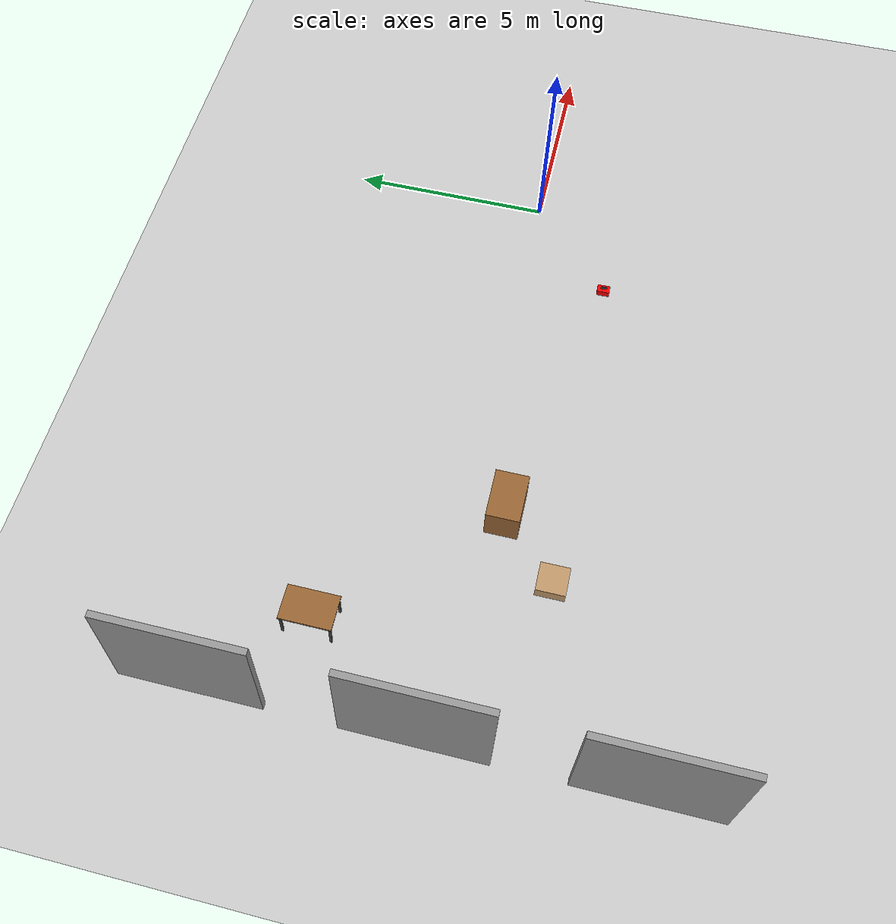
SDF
<sdf version="1.8">
 <world name="my_world">
  <physics name="1ms" type="ignored">
   <max_step_size>0.001</max_step_size>
   <real_time_factor>1.0</real_time_factor>
  </physics>
  <plugin filename="ignition-gazebo-physics-system" name="gz::sim::systems::Physics"/>
  <plugin filename="ignition-gazebo-user-commands-system" name="gz::sim::systems::UserCommands"/>
  <plugin filename="ignition-gazebo-scene-broadcaster-system" name="gz::sim::systems::SceneBroadcaster"/>
  <plugin filename="libignition-gazebo-sensors-system.so" name="ignition::gazebo::systems::Sensors">
   <render_engine>ogre2</render_engine>
  </plugin>
  <light type="directional" name="main_sun">
   <pose>0 0 10 0 0 0</pose>
   <diffuse>0.8 0.8 0.8 1</diffuse>
   <specular>0.2 0.2 0.2 1</specular>
   <attenuation>
    <range>1000</range>
    <constant>0.9</constant>
    <linear>0.01</linear>
    <quadratic>0.001</quadratic>
   </attenuation>
   <direction>-0.5 0.1 -0.9</direction>
  </light>
  <model name="ground_plane">
   <static>true</static>
   <link name="link">
    <collision name="collision">
     <geometry><plane><normal>0 0 1</normal><size>100 100</size></plane></geometry>
    </collision>
    <visual name="visual">
     <geometry><plane><normal>0 0 1</normal><size>100 100</size></plane></geometry>
     <material>
      <ambient>0.8 0.8 0.8 1</ambient>
      <diffuse>0.8 0.8 0.8 1</diffuse>
      <specular>0.8 0.8 0.8 1</specular>
     </material>
    </visual>
   </link>
  </model>
  <include>
   <uri>model://garage_door</uri>
   <name>right_door</name>
   <pose>-15.033500 -5.081130 1.687260 0 0 0</pose>
  </include>
  <include>
   <uri>model://garage_door</uri>
   <name>central_door</name>
   <pose>-15.033500 -0.136491 1.687260 0 0 0</pose>
  </include>
  <include>
   <uri>model://garage_door</uri>
   <name>left_door</name>
   <pose>-15.033500 4.803520 1.687260 0 0 0</pose>
  </include>
  <include>
   <uri>file:///home/moonlab/ros2_ws/src/ros2_ignition_thesis/my_sim_tesi_gazebo/models/husky/model.sdf</uri>
   <name>husky_robot</name>
   <pose>-13.10 2.64 0.5 0 0 -1.57079</pose>
  </include>
  <include>
   <uri>model://parallelepiped</uri>
   <pose>-10.773700 -2.313900 0.15 0 0 0</pose>
   <name>start_parallelepiped</name>
  </include>
  <model name="red_toolbox">
   <pose>-3.8022060 -2.12 2 0 0 -1.561590</pose>
   <link name="toolbox_body">
    <inertial>
     <mass>2.0</mass>
     <inertia><ixx>0.02</ixx><ixy>0.0</ixy><ixz>0.0</ixz><iyy>0.02</iyy><iyz>0.0</iyz><izz>0.02</izz></inertia>
    </inertial>
    <collision name="body_collision"><geometry><box><size>0.3 0.2 0.15</size></box></geometry></collision>
    <visual name="body_visual">
     <geometry><box><size>0.3 0.2 0.15</size></box></geometry>
     <material><ambient>0.8 0 0 1</ambient><diffuse>1 0 0 1</diffuse><specular>0.5 0.5 0.5 1</specular></material>
    </visual>
    <collision name="handle_collision">
     <pose>0 0 0.1 0 0 0</pose>
     <geometry><box><size>0.15 0.02 0.08</size></box></geometry>
    </collision>
    <visual name="handle_visual">
     <pose>0 0 0.1 0 0 0</pose>
     <geometry><box><size>0.15 0.02 0.08</size></box></geometry>
     <material>
      <ambient>0.2 0.2 0.2 1</ambient>
      <diffuse>0.3 0.3 0.3 1</diffuse>
      <specular>0.8 0.8 0.8 1</specular>
     </material>
    </visual>
   </link>
  </model>
  <model name="centre_table">
   <static>false</static>
   <pose>-9.27 -0.930217 0.45 0 0 0</pose>
   <link name="table_link">
    <inertial>
     <mass>20.0</mass>
     <inertia><ixx>1.5</ixx><ixy>0.0</ixy><ixz>0.0</ixz><iyy>2.5</iyy><iyz>0.0</iyz><izz>1.0</izz></inertia>
    </inertial>
    <collision name="table_collision"><geometry><box><size>1.2 0.8 0.9</size></box></geometry></collision>
    <visual name="table_visual">
     <geometry><box><size>1.2 0.8 0.9</size></box></geometry>
     <material>
      <ambient>0.5 0.3 0.1 1</ambient>
      <diffuse>0.6 0.4 0.2 1</diffuse>
      <specular>0.1 0.1 0.1 1</specular>
     </material>
    </visual>
   </link>
  </model>
 </world>
</sdf>

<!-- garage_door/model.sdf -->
<sdf version="1.8">
    <model name = "garage_door">
        <static>true</static>
        <link name = "door_link">
            <visual name = "door_visual">
                <geometry>
                    <box>
                        <size> 0.15 3.30 3.25 </size>
                    </box>
                </geometry>
                <material>
                    <ambient>0.3 0.3 0.3 1</ambient>
                    <diffuse>0.6 0.6 0.6 1</diffuse>
                    <specular>0.9 0.9 0.9 1</specular>
                    <emissive>0 0 0 1</emissive>
                </material>
            </visual>
        </link>
    </model>
</sdf>

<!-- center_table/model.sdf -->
<sdf version="1.7">

<model name="center_table">
  <static>true</static>

  <!-- Table top -->
  <link name="table_top">
    <pose>0 0 0.75 0 0 0</pose>
    <visual name="visual">
      <geometry>
        <box>
          <size>1.2 0.8 0.05</size>
        </box>
      </geometry>
      <material>
        <ambient>0.6 0.4 0.2 1</ambient>
        <diffuse>0.6 0.4 0.2 1</diffuse>
      </material>
    </visual>
    <collision name="collision">
      <geometry>
        <box>
          <size>1.2 0.8 0.05</size>
        </box>
      </geometry>
    </collision>
  </link>

  <!-- 4 legs -->
  <!-- leg length = 0.7, thickness = 0.05 -->
  <link name="leg1">
    <pose>0.55 0.35 0.35 0 0 0</pose>
    <visual name="visual">
      <geometry>
        <box><size>0.05 0.05 0.7</size></box>
      </geometry>
      <material><ambient>0.3 0.3 0.3 1</ambient></material>
    </visual>
    <collision name="collision">
      <geometry><box><size>0.05 0.05 0.7</size></box></geometry>
    </collision>
  </link>

  <link name="leg2">
    <pose>-0.55 0.35 0.35 0 0 0</pose>
    <visual name="visual">
      <geometry><box><size>0.05 0.05 0.7</size></box></geometry>
      <material><ambient>0.3 0.3 0.3 1</ambient></material>
    </visual>
    <collision name="collision">
      <geometry><box><size>0.05 0.05 0.7</size></box></geometry>
    </collision>
  </link>

  <link name="leg3">
    <pose>0.55 -0.35 0.35 0 0 0</pose>
    <visual name="visual">
      <geometry><box><size>0.05 0.05 0.7</size></box></geometry>
      <material><ambient>0.3 0.3 0.3 1</ambient></material>
    </visual>
    <collision name="collision">
      <geometry><box><size>0.05 0.05 0.7</size></box></geometry>
    </collision>
  </link>

  <link name="leg4">
    <pose>-0.55 -0.35 0.35 0 0 0</pose>
    <visual name="visual">
      <geometry><box><size>0.05 0.05 0.7</size></box></geometry>
      <material><ambient>0.3 0.3 0.3 1</ambient></material>
    </visual>
    <collision name="collision">
      <geometry><box><size>0.05 0.05 0.7</size></box></geometry>
    </collision>
  </link>

</model>

</sdf>

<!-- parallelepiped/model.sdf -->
<sdf version="1.8">
    <model name = "parallelepiped">
        <static>true</static>
        <link name = "parallelepiped_link">
            <visual name = "parallelepiped_visual">
                <geometry>
                    <box>
                        <size> 0.7 0.7 0.3 </size>
                    </box>
                </geometry>
                <material>
                    <ambient>0.76 0.60 0.42 1</ambient>
                    <diffuse>0.76 0.60 0.42 1</diffuse>
                    <specular>0.2 0.2 0.2 1</specular>
                    <emissive>0 0 0 1</emissive>
                </material>
            </visual>
            <collision name = "parallelepiped_collision">
                <geometry>
                    <box>
                        <size> 0.7 0.7 0.3 </size>
                    </box>
                </geometry>
            </collision>
        </link>
    </model>
</sdf>
